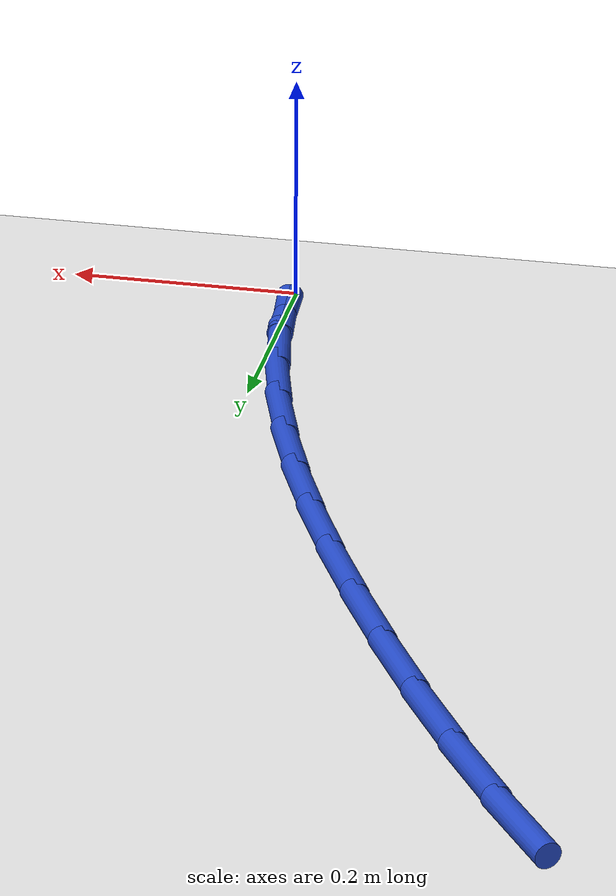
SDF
<sdf version="1.6">
 <world name="default">
  <model name="ground_plane">
   <static>1</static>
   <link name="link">
    <collision name="collision">
     <geometry><plane><normal>0 0 1</normal><size>100 100</size></plane></geometry>
     <surface><friction><ode><mu>100</mu><mu2>50</mu2></ode></friction></surface>
    </collision>
    <visual name="visual">
     <cast_shadows>0</cast_shadows>
     <geometry><plane><normal>0 0 1</normal><size>100 100</size></plane></geometry>
     <material>
      <script><uri>file://media/materials/scripts/gazebo.material</uri><name>Gazebo/WhiteGlow</name></script>
     </material>
    </visual>
   </link>
  </model>
  <model name="line">
   <link name="link_1">
    <pose>-0.0033943242509352814 0.0634193653783796 0.01 0 1.57 -1.446457664349469</pose>
    <collision name="collision">
     <geometry><cylinder><radius>0.01</radius><length>0.08</length></cylinder></geometry>
    </collision>
    <visual name="visual">
     <material>
      <script><name>Gazebo/Blue</name><uri>file://media/materials/scripts/gazebo.material</uri></script>
     </material>
     <geometry><cylinder><radius>0.01</radius><length>0.08</length></cylinder></geometry>
    </visual>
   </link>
   <link name="link_2">
    <pose>-0.011206690542899455 0.12592659030110392 0.01 0 1.57 -1.3794617690441675</pose>
    <collision name="collision">
     <geometry><cylinder><radius>0.01</radius><length>0.08</length></cylinder></geometry>
    </collision>
    <visual name="visual">
     <material>
      <script><name>Gazebo/Blue</name><uri>file://media/materials/scripts/gazebo.material</uri></script>
     </material>
     <geometry><cylinder><radius>0.01</radius><length>0.08</length></cylinder></geometry>
    </visual>
   </link>
   <link name="link_3">
    <pose>-0.023189520823469575 0.18778810743551705 0.01 0 1.57 -1.3176423710420166</pose>
    <collision name="collision">
     <geometry><cylinder><radius>0.01</radius><length>0.08</length></cylinder></geometry>
    </collision>
    <visual name="visual">
     <material>
      <script><name>Gazebo/Blue</name><uri>file://media/materials/scripts/gazebo.material</uri></script>
     </material>
     <geometry><cylinder><radius>0.01</radius><length>0.08</length></cylinder></geometry>
    </visual>
   </link>
   <link name="link_4">
    <pose>-0.03909523704022272 0.24927034944896334 0.01 0 1.57 -1.2619388538027585</pose>
    <collision name="collision">
     <geometry><cylinder><radius>0.01</radius><length>0.08</length></cylinder></geometry>
    </collision>
    <visual name="visual">
     <material>
      <script><name>Gazebo/Blue</name><uri>file://media/materials/scripts/gazebo.material</uri></script>
     </material>
     <geometry><cylinder><radius>0.01</radius><length>0.08</length></cylinder></geometry>
    </visual>
   </link>
   <link name="link_5">
    <pose>-0.05867626114073591 0.3106397490087868 0.01 0 1.57 -1.2129146955192964</pose>
    <collision name="collision">
     <geometry><cylinder><radius>0.01</radius><length>0.08</length></cylinder></geometry>
    </collision>
    <visual name="visual">
     <material>
      <script><name>Gazebo/Blue</name><uri>file://media/materials/scripts/gazebo.material</uri></script>
     </material>
     <geometry><cylinder><radius>0.01</radius><length>0.08</length></cylinder></geometry>
    </visual>
   </link>
   <link name="link_6">
    <pose>-0.08168501507258615 0.37216273878233175 0.01 0 1.57 -1.1707987918578793</pose>
    <collision name="collision">
     <geometry><cylinder><radius>0.01</radius><length>0.08</length></cylinder></geometry>
    </collision>
    <visual name="visual">
     <material>
      <script><name>Gazebo/Blue</name><uri>file://media/materials/scripts/gazebo.material</uri></script>
     </material>
     <geometry><cylinder><radius>0.01</radius><length>0.08</length></cylinder></geometry>
    </visual>
   </link>
   <link name="link_7">
    <pose>-0.1078739207833505 0.4341057514369421 0.01 0 1.57 -1.1355547135638218</pose>
    <collision name="collision">
     <geometry><cylinder><radius>0.01</radius><length>0.08</length></cylinder></geometry>
    </collision>
    <visual name="visual">
     <material>
      <script><name>Gazebo/Blue</name><uri>file://media/materials/scripts/gazebo.material</uri></script>
     </material>
     <geometry><cylinder><radius>0.01</radius><length>0.08</length></cylinder></geometry>
    </visual>
   </link>
   <link name="link_8">
    <pose>-0.13699540022060602 0.4967352196399622 0.01 0 1.57 -1.106915682497287</pose>
    <collision name="collision">
     <geometry><cylinder><radius>0.01</radius><length>0.08</length></cylinder></geometry>
    </collision>
    <visual name="visual">
     <material>
      <script><name>Gazebo/Blue</name><uri>file://media/materials/scripts/gazebo.material</uri></script>
     </material>
     <geometry><cylinder><radius>0.01</radius><length>0.08</length></cylinder></geometry>
    </visual>
   </link>
   <link name="link_9">
    <pose>-0.16880260993517912 0.560312595320658 0.01 0 1.57 -1.0815636689377353</pose>
    <collision name="collision">
     <geometry><cylinder><radius>0.01</radius><length>0.08</length></cylinder></geometry>
    </collision>
    <visual name="visual">
     <material>
      <script><name>Gazebo/Blue</name><uri>file://media/materials/scripts/gazebo.material</uri></script>
     </material>
     <geometry><cylinder><radius>0.01</radius><length>0.08</length></cylinder></geometry>
    </visual>
   </link>
   <link name="link_10">
    <pose>-0.20310219029575363 0.6247367008005966 0.01 0 1.57 -1.0540854396269395</pose>
    <collision name="collision">
     <geometry><cylinder><radius>0.01</radius><length>0.08</length></cylinder></geometry>
    </collision>
    <visual name="visual">
     <material>
      <script><name>Gazebo/Blue</name><uri>file://media/materials/scripts/gazebo.material</uri></script>
     </material>
     <geometry><cylinder><radius>0.01</radius><length>0.08</length></cylinder></geometry>
    </visual>
   </link>
   <link name="link_11">
    <pose>-0.2397895976776007 0.6893041703953918 0.01 0 1.57 -1.0234079279012036</pose>
    <collision name="collision">
     <geometry><cylinder><radius>0.01</radius><length>0.08</length></cylinder></geometry>
    </collision>
    <visual name="visual">
     <material>
      <script><name>Gazebo/Blue</name><uri>file://media/materials/scripts/gazebo.material</uri></script>
     </material>
     <geometry><cylinder><radius>0.01</radius><length>0.08</length></cylinder></geometry>
    </visual>
   </link>
   <link name="link_12">
    <pose>-0.278768664442662 0.7532548477710357 0.01 0 1.57 -0.9888060930913534</pose>
    <collision name="collision">
     <geometry><cylinder><radius>0.01</radius><length>0.08</length></cylinder></geometry>
    </collision>
    <visual name="visual">
     <material>
      <script><name>Gazebo/Blue</name><uri>file://media/materials/scripts/gazebo.material</uri></script>
     </material>
     <geometry><cylinder><radius>0.01</radius><length>0.08</length></cylinder></geometry>
    </visual>
   </link>
   <link name="link_13">
    <pose>-0.31994322295287925 0.8158285765935196 0.01 0 1.57 -0.9493988446812016</pose>
    <collision name="collision">
     <geometry><cylinder><radius>0.01</radius><length>0.08</length></cylinder></geometry>
    </collision>
    <visual name="visual">
     <material>
      <script><name>Gazebo/Blue</name><uri>file://media/materials/scripts/gazebo.material</uri></script>
     </material>
     <geometry><cylinder><radius>0.01</radius><length>0.08</length></cylinder></geometry>
    </visual>
   </link>
   <link name="link_111">
    <pose>-0.00344765983918471 0.06328377843076924 0.01 0 1.57 -1.5163707678269842</pose>
    <collision name="collision">
     <geometry><cylinder><radius>0.01</radius><length>0.08</length></cylinder></geometry>
    </collision>
    <visual name="visual">
     <material>
      <script><name>Gazebo/Blue</name><uri>file://media/materials/scripts/gazebo.material</uri></script>
     </material>
     <geometry><cylinder><radius>0.01</radius><length>0.08</length></cylinder></geometry>
    </visual>
   </link>
  </model>
 </world>
</sdf>
